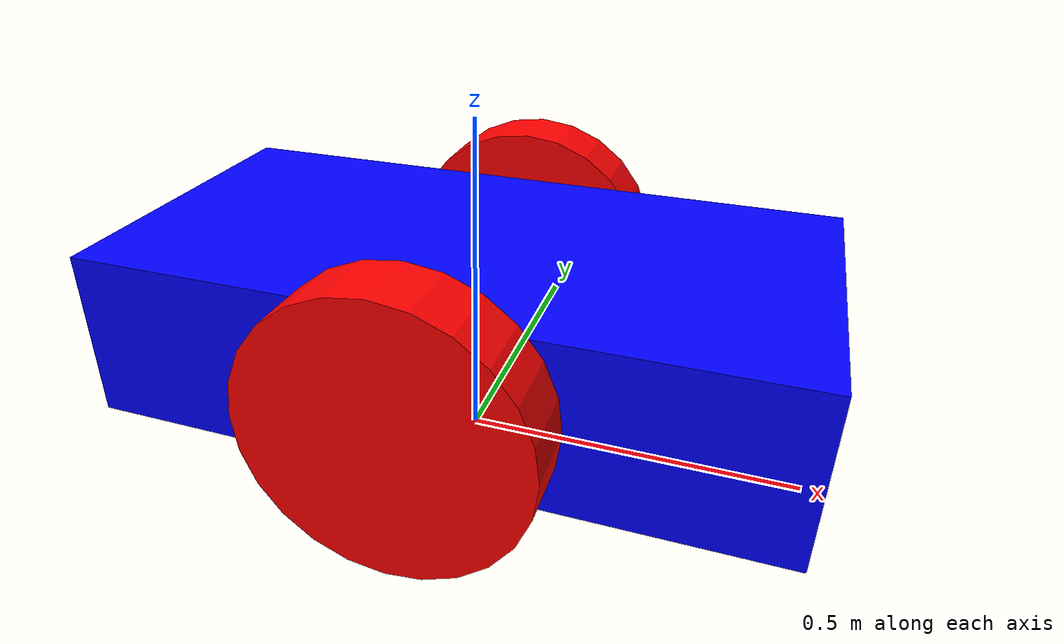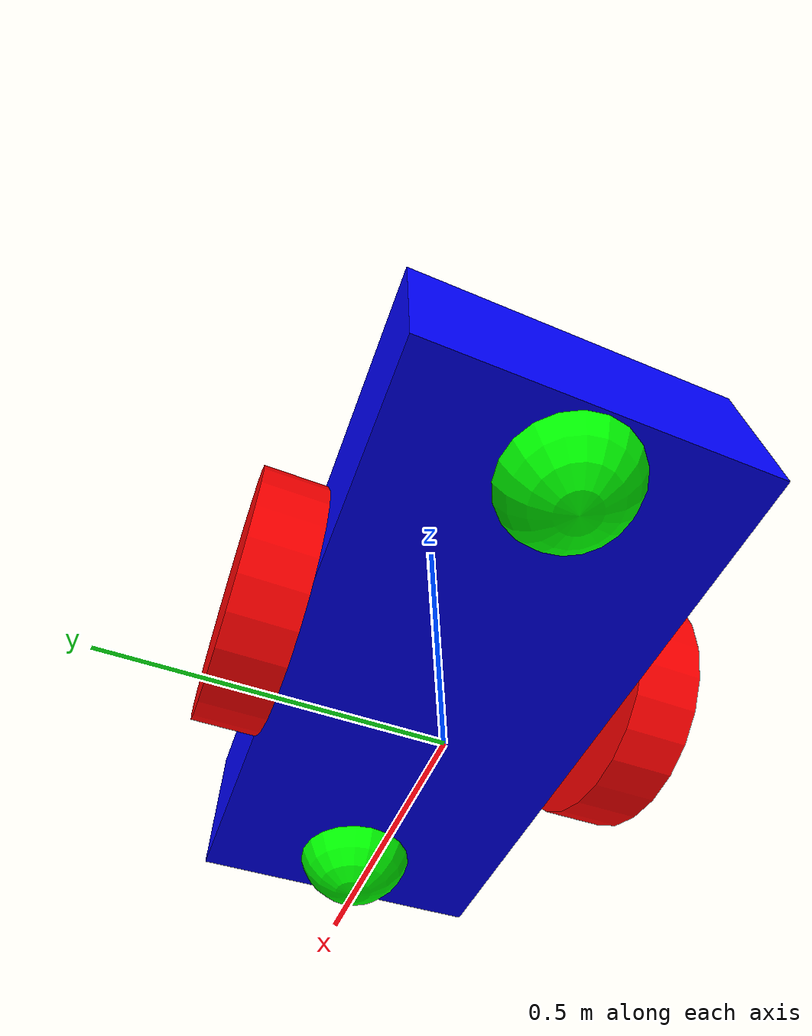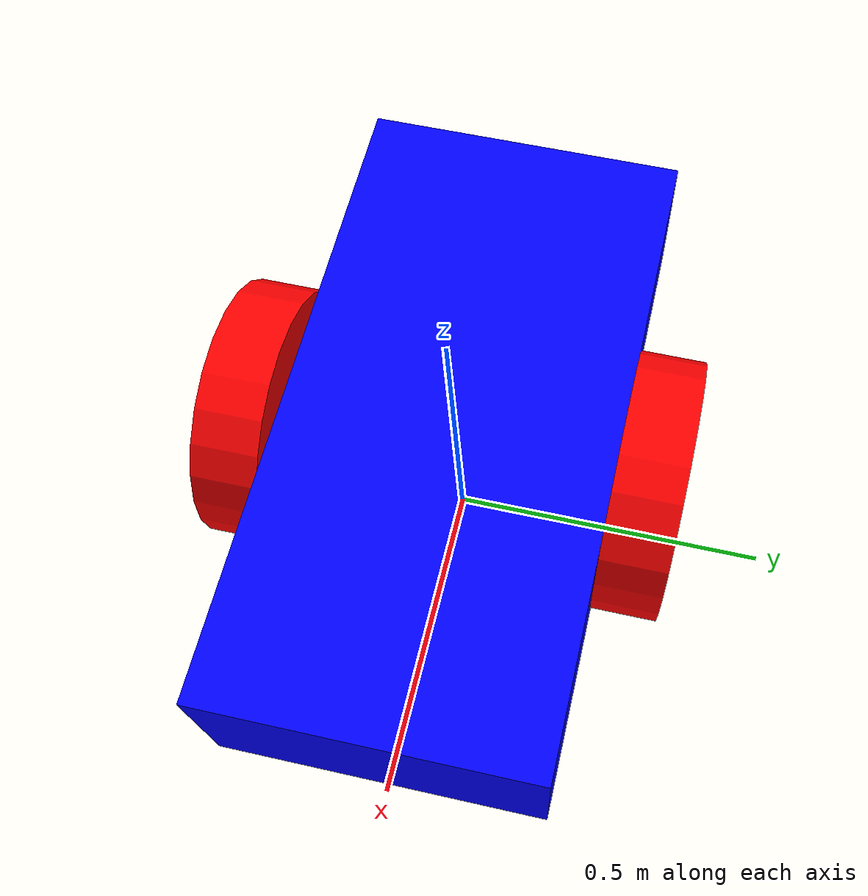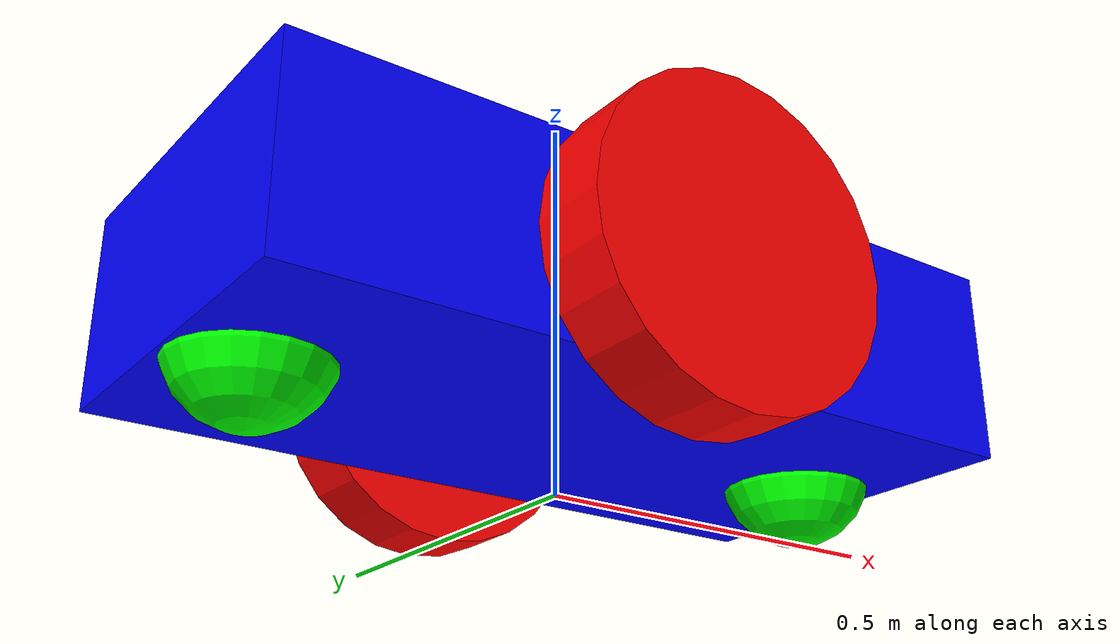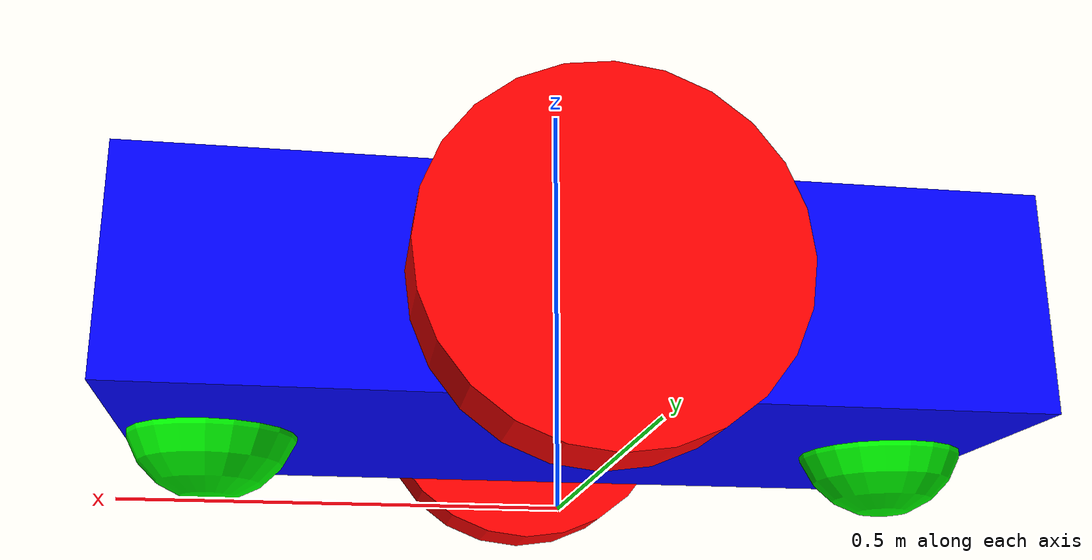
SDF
<?xml version="1.0" ?>
<sdf version="1.9">
    <model name='Crawler' canonical_link='base_link'>

      <frame name="caster_frame1" attached_to='base_link'>
        <pose>0.4 0 -0.1 0 0 0</pose>
      </frame>
      <frame name="caster_frame2" attached_to='base_link'>
        <pose>-0.4 0 -0.1 0 0 0</pose>
      </frame>

      <link name='base_link'>
        <pose relative_to='__model__'>0 0 0.2 0 0 0</pose>
        <inertial>
          <mass>2</mass>
          <inertia>
            <ixx>0.0520833</ixx>
            <ixy>0</ixy>
            <ixz>0</ixz>
            <iyy>0.1760417</iyy>
            <iyz>0</iyz>
            <izz>0.2083333</izz>
          </inertia>
        </inertial>
        <visual name='base_link_visual'>
          <geometry>
            <box>
              <size>1.0 0.5 0.25</size>
            </box>
          </geometry>
          <material>
            <ambient>0.0 0.0 1.0 1</ambient>
            <diffuse>0.0 0.0 1.0 1</diffuse>
            <specular>0.0 0.0 1.0 1</specular>
          </material>
        </visual>
        <collision name='collision'>
          <geometry>
            <box>
              <size>1.0 0.5 0.25</size>  <!-- Halved size -->
            </box>
          </geometry>
        </collision>
        <sensor name="IMU" type="imu">
          <always_on>1</always_on>
          <update_rate>30</update_rate>
          <visualize>true</visualize>
          <topic>imu</topic>
          <imu>
            <angular_velocity>
              <x>
                <noise type='gaussian'>
                  <mean>0</mean>
                  <stddev>0.001</stddev>
                </noise>
              </x>
              <y>
                <noise type='gaussian'>
                  <mean>0</mean>
                  <stddev>0.001</stddev>
                </noise>
              </y>
              <z>
                <noise type='none' />
              </z>
            </angular_velocity>
            <linear_acceleration>
              <x>
                <noise type='gaussian'>
                  <mean>0</mean>
                  <stddev>0.0005</stddev>
                </noise>
              </x>
              <y>
                <noise type='gaussian'>
                  <mean>0</mean>
                  <stddev>0.0005</stddev>
                </noise>
              </y>
              <z>
                <noise type='none' />
              </z>
            </linear_acceleration>
            <enable_orientation>true</enable_orientation>
          </imu>
        </sensor>

        <sensor name='LinSense' type='gpu_lidar'>
          <pose relative_to='base_link'>0 0 0.25 0 0 0</pose>
          <topic>scan_lid</topic>
          <ray>
            <scan>
              <horizontal>
                <samples>360</samples>
                <resolution>1</resolution>
                <min_angle>-3.14159</min_angle>
                <max_angle>3.14159</max_angle>
              </horizontal>
            </scan>
            <range>
              <min>0.1</min>
              <max>10.0</max>
            </range>
          </ray>
          <visualize>true</visualize>
          <update_rate>30</update_rate>
          <always_on>1</always_on>
          <noise>
            <type>gaussian_noise</type>
            <mean>0</mean>
            <stddev>0.01</stddev>
          </noise>
        </sensor>

      </link>
       <link name='base_footprint'>
        <pose relative_to='base_link'>0 0 -0.2 0 0 0</pose>
      </link>

      <link name='left_wheel'>
        <pose relative_to='base_link'>0 0.3 0 -1.5707 0 0</pose>
        <inertial>
          <mass>2</mass>
          <inertia>
            <ixx>0.01667</ixx>
            <ixy>0</ixy>
            <ixz>0</ixz>
            <iyy>0.01667</iyy>
            <iyz>0</iyz>
            <izz>0.004</izz>
          </inertia>
        </inertial>

        <visual name='visual'>
          <geometry>
            <cylinder>
              <radius>0.2</radius>
              <length>0.1</length>
            </cylinder>
          </geometry>
          <material>
            <ambient>1.0 0.0 0.0 1</ambient>
            <diffuse>1.0 0.0 0.0 1</diffuse>
            <specular>1.0 0.0 0.0 1</specular>
          </material>
        </visual>

        <collision name='collision'>
          <geometry>
            <cylinder>
              <radius>0.2</radius>
              <length>0.1</length>
            </cylinder>
          </geometry>
        </collision>
      </link>

      <link name='right_wheel'>
        <pose relative_to="base_link">0 -0.3 0 -1.5707 0 0</pose>
        <inertial>
        <mass>2</mass>
        <inertia>
          <ixx>0.01667</ixx>
          <ixy>0</ixy>
          <ixz>0</ixz>
          <iyy>0.01667</iyy>
          <iyz>0</iyz>
          <izz>0.004</izz>
        </inertia>
      </inertial>

        <visual name='visual'>
          <geometry>
            <cylinder>
              <radius>0.2</radius>
              <length>0.1</length>
            </cylinder>
          </geometry>
          <material>
            <ambient>1.0 0.0 0.0 1</ambient>
            <diffuse>1.0 0.0 0.0 1</diffuse>
            <specular>1.0 0.0 0.0 1</specular>
          </material>
        </visual>

        <collision name='collision'>
          <geometry>
            <cylinder>
              <radius>0.2</radius>
              <length>0.1</length>
            </cylinder>
          </geometry>
        </collision>
      </link>

      <link name='caster1'>
        <pose relative_to='caster_frame1'/>
        <inertial>
          <mass>2</mass>
          <inertia>
            <ixx>0.004</ixx>
            <ixy>0</ixy>
            <ixz>0</ixz>
            <iyy>0.004</iyy>
            <iyz>0</iyz>
            <izz>0.004</izz>
          </inertia>
        </inertial>

        <visual name='visual'>
            <geometry>
                <sphere>
                    <radius>0.1</radius>
                </sphere>
            </geometry>
            <material>
                <ambient>0.0 1 0.0 1</ambient>
                <diffuse>0.0 1 0.0 1</diffuse>
                <specular>0.0 1 0.0 1</specular>
            </material>
        </visual>

        <collision name='collision'>
            <geometry>
                <sphere>
                    <radius>0.1</radius>
                </sphere>
            </geometry>
        </collision>
      </link>

      <link name='caster2'>
        <pose relative_to='caster_frame2'/>
        <inertial>
          <mass>2</mass>
          <inertia>
            <ixx>0.004</ixx>
            <ixy>0</ixy>
            <ixz>0</ixz>
            <iyy>0.004</iyy>
            <iyz>0</iyz>
            <izz>0.004</izz>
          </inertia>
        </inertial>

        <visual name='visual'>
            <geometry>
                <sphere>
                    <radius>0.1</radius>
                </sphere>
            </geometry>
            <material>
                <ambient>0.0 1 0.0 1</ambient>
                <diffuse>0.0 1 0.0 1</diffuse>
                <specular>0.0 1 0.0 1</specular>
            </material>
        </visual>

        <collision name='collision'>
            <geometry>
                <sphere>
                    <radius>0.1</radius>
                </sphere>
            </geometry>
        </collision>
      </link>

      <joint name='left_wheel_joint' type='revolute'>
        <parent>base_link</parent>
        <child>left_wheel</child>
        <axis>
            <xyz expressed_in='__model__'>0 1 0</xyz>
            <limit>
                <lower>-1.79769e+308</lower>
                <upper>1.79769e+308</upper>
            </limit>
        </axis>
      </joint>

      <joint name='right_wheel_joint' type='revolute'>
        <parent>base_link</parent>
        <child>right_wheel</child>
        <axis>
            <xyz expressed_in='__model__'>0 1 0</xyz>
            <limit>
                <lower>-1.79769e+308</lower>
                <upper>1.79769e+308</upper>
            </limit>
        </axis>
      </joint>

      <joint name='caster_wheel1' type='ball'>
        <parent>base_link</parent>
        <child>caster1</child>
      </joint>

      <joint name='caster_wheel2' type='ball'>
        <parent>base_link</parent>
        <child>caster2</child>
      </joint>

      <joint name='base_footprint_joint' type='fixed'>
        <parent>base_link</parent>
        <child>base_footprint</child>
      </joint>

      <plugin
        filename="libignition-gazebo-diff-drive-system.so"
        name="ignition::gazebo::systems::DiffDrive">
        <left_joint>left_wheel_joint</left_joint>
        <right_joint>right_wheel_joint</right_joint>
        <wheel_separation>0.6</wheel_separation>
        <wheel_radius>0.2</wheel_radius>
        <topic>cmd_vel</topic>
        <robotBaseFrame>base_link</robotBaseFrame>
        <odometryFrame>odom</odometryFrame>
        <odometrySource>1</odometrySource>
      </plugin>

      <plugin
          filename="ignition-gazebo-odometry-publisher-system"
          name="ignition::gazebo::systems::OdometryPublisher">
          <odom_frame>odom</odom_frame>
          <robot_base_frame>base_link</robot_base_frame>
          <odom_topic>odom</odom_topic>
          <odom_publish_frequency>100</odom_publish_frequency>
          <odom_covariance_topic>odom_cv</odom_covariance_topic>
          <gaussian_noise>0.02</gaussian_noise>
      </plugin>

      <plugin
        filename="ignition-gazebo-joint-state-publisher-system"
        name="ignition::gazebo::systems::JointStatePublisher">
         <publish_link_pose>true</publish_link_pose>
        <use_pose_vector_msg>true</use_pose_vector_msg>
      </plugin>

      <plugin filename="libignition-gazebo-triggered-publisher-system.so"
        name="ignition::gazebo::systems::TriggeredPublisher">
        <input type="ignition.msgs.Int32" topic="/keyboard/keypress">
        <match field="data">16777235</match>
        </input>
        <output type="ignition.msgs.Twist" topic="/cmd_vel">
        linear: {x: 1.0}, angular: {z: 0.0}
        </output>
      </plugin>
      <plugin filename="libignition-gazebo-triggered-publisher-system.so"
        name="ignition::gazebo::systems::TriggeredPublisher">
        <input type="ignition.msgs.Int32" topic="/keyboard/keypress">
        <match field="data">16777237</match>
        </input>
        <output type="ignition.msgs.Twist" topic="/cmd_vel">
        linear: {x: -1.0}, angular: {z: 0.0}
        </output>
      </plugin>
      <plugin filename="libignition-gazebo-triggered-publisher-system.so"
        name="ignition::gazebo::systems::TriggeredPublisher">
        <input type="ignition.msgs.Int32" topic="/keyboard/keypress">
        <match field="data">16777234</match>
        </input>
        <output type="ignition.msgs.Twist" topic="/cmd_vel">
        linear: {x: 0.0}, angular: {z: 1.0}
        </output>
      </plugin>
      <plugin filename="libignition-gazebo-triggered-publisher-system.so"
        name="ignition::gazebo::systems::TriggeredPublisher">
        <input type="ignition.msgs.Int32" topic="/keyboard/keypress">
        <match field="data">16777236</match>
        </input>
        <output type="ignition.msgs.Twist" topic="/cmd_vel">
        linear: {x: 0.0}, angular: {z: -1.0}
        </output>
      </plugin>
      <plugin filename="libignition-gazebo-triggered-publisher-system.so"
        name="ignition::gazebo::systems::TriggeredPublisher">
        <input type="ignition.msgs.Int32" topic="/keyboard/keypress">
        <match field="data">88</match>
        </input>
        <output type="ignition.msgs.Twist" topic="/cmd_vel">
        linear: {x: 0.0}, angular: {z: 0.0}
        </output>
      </plugin>
    </model>
</sdf>
